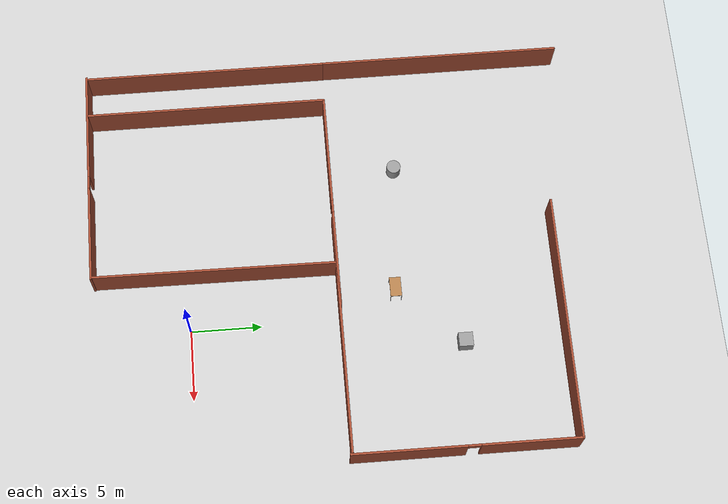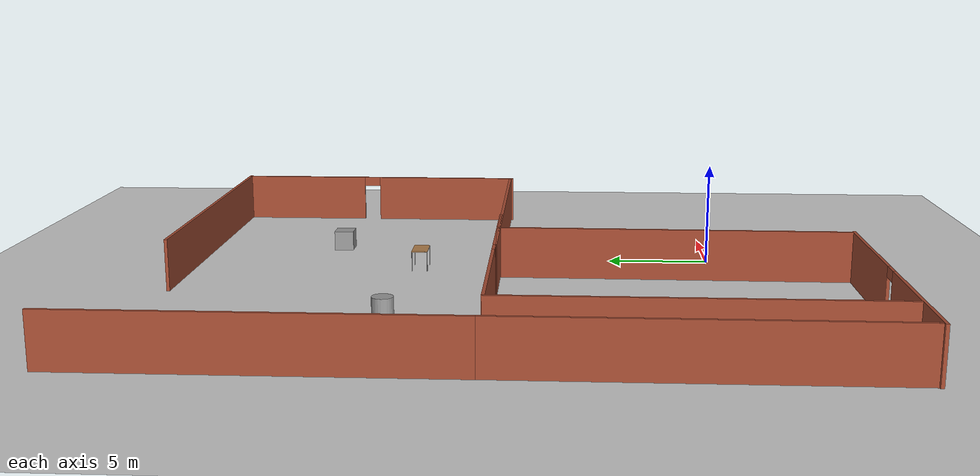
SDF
<sdf version="1.6">
 <world name="default">
  <model name="ground_plane">
   <static>1</static>
   <link name="link">
    <collision name="collision">
     <geometry><plane><normal>0 0 1</normal><size>100 100</size></plane></geometry>
     <surface><friction><ode><mu>100</mu><mu2>50</mu2></ode></friction></surface>
    </collision>
    <visual name="visual">
     <cast_shadows>0</cast_shadows>
     <geometry><plane><normal>0 0 1</normal><size>100 100</size></plane></geometry>
     <material>
      <script><uri>file://media/materials/scripts/gazebo.material</uri><name>Gazebo/Grey</name></script>
     </material>
    </visual>
   </link>
  </model>
  <model name="room11_0">
   <link name="Wall_15">
    <pose>0.315316 -4.25465 0 0 -0 0</pose>
    <visual name="Wall_15_Visual_0">
     <pose>-3.91595 0 1.25 0 -0 0</pose>
     <geometry><box><size>7.91811 0.15 2.5</size></box></geometry>
     <material>
      <script><uri>file://media/materials/scripts/gazebo.material</uri><name>Gazebo/Bricks</name></script>
      <ambient>1 1 1 1</ambient>
      <diffuse>1 1 1 1</diffuse>
      <specular>0.2 0.2 0.2 1</specular>
      <emissive>0 0 0 1</emissive>
     </material>
    </visual>
    <visual name="Wall_15_Visual_1">
     <pose>4.40905 0 1.25 0 -0 0</pose>
     <geometry><box><size>6.93189 0.15 2.5</size></box></geometry>
     <material>
      <script><uri>file://media/materials/scripts/gazebo.material</uri><name>Gazebo/Bricks</name></script>
      <ambient>1 1 1 1</ambient>
      <diffuse>1 1 1 1</diffuse>
      <specular>0.2 0.2 0.2 1</specular>
      <emissive>0 0 0 1</emissive>
     </material>
    </visual>
    <visual name="Wall_15_Visual_2">
     <pose>0.493108 0 2.25 0 -0 0</pose>
     <geometry><box><size>0.9 0.15 0.5</size></box></geometry>
     <material>
      <script><uri>file://media/materials/scripts/gazebo.material</uri><name>Gazebo/Bricks</name></script>
      <ambient>1 1 1 1</ambient>
      <diffuse>1 1 1 1</diffuse>
      <specular>0.2 0.2 0.2 1</specular>
      <emissive>0 0 0 1</emissive>
     </material>
    </visual>
    <collision name="Wall_15_Collision_0">
     <pose>-3.91595 0 1.25 0 -0 0</pose>
     <geometry><box><size>7.91811 0.15 2.5</size></box></geometry>
     <surface>
      <friction>
       <ode><mu>1</mu><mu2>1</mu2><fdir1>0 0 0</fdir1><slip1>0</slip1><slip2>0</slip2></ode>
       <torsional>
        <coefficient>1</coefficient>
        <patch_radius>0</patch_radius>
        <surface_radius>0</surface_radius>
        <use_patch_radius>1</use_patch_radius>
        <ode><slip>0</slip></ode>
       </torsional>
      </friction>
      <bounce><restitution_coefficient>0</restitution_coefficient><threshold>1e+06</threshold></bounce>
      <contact>
       <collide_without_contact>0</collide_without_contact>
       <collide_without_contact_bitmask>1</collide_without_contact_bitmask>
       <collide_bitmask>1</collide_bitmask>
       <ode>
        <soft_cfm>0</soft_cfm>
        <soft_erp>0.2</soft_erp>
        <kp>1e+13</kp>
        <kd>1</kd>
        <max_vel>0.01</max_vel>
        <min_depth>0</min_depth>
       </ode>
       <bullet>
        <split_impulse>1</split_impulse>
        <split_impulse_penetration_threshold>-0.01</split_impulse_penetration_threshold>
        <soft_cfm>0</soft_cfm>
        <soft_erp>0.2</soft_erp>
        <kp>1e+13</kp>
        <kd>1</kd>
       </bullet>
      </contact>
     </surface>
    </collision>
    <collision name="Wall_15_Collision_1">
     <pose>4.40905 0 1.25 0 -0 0</pose>
     <geometry><box><size>6.93189 0.15 2.5</size></box></geometry>
     <surface>
      <friction>
       <ode><mu>1</mu><mu2>1</mu2><fdir1>0 0 0</fdir1><slip1>0</slip1><slip2>0</slip2></ode>
       <torsional>
        <coefficient>1</coefficient>
        <patch_radius>0</patch_radius>
        <surface_radius>0</surface_radius>
        <use_patch_radius>1</use_patch_radius>
        <ode><slip>0</slip></ode>
       </torsional>
      </friction>
      <bounce><restitution_coefficient>0</restitution_coefficient><threshold>1e+06</threshold></bounce>
      <contact>
       <collide_without_contact>0</collide_without_contact>
       <collide_without_contact_bitmask>1</collide_without_contact_bitmask>
       <collide_bitmask>1</collide_bitmask>
       <ode>
        <soft_cfm>0</soft_cfm>
        <soft_erp>0.2</soft_erp>
        <kp>1e+13</kp>
        <kd>1</kd>
        <max_vel>0.01</max_vel>
        <min_depth>0</min_depth>
       </ode>
       <bullet>
        <split_impulse>1</split_impulse>
        <split_impulse_penetration_threshold>-0.01</split_impulse_penetration_threshold>
        <soft_cfm>0</soft_cfm>
        <soft_erp>0.2</soft_erp>
        <kp>1e+13</kp>
        <kd>1</kd>
       </bullet>
      </contact>
     </surface>
    </collision>
    <collision name="Wall_15_Collision_2">
     <pose>0.493108 0 2.25 0 -0 0</pose>
     <geometry><box><size>0.9 0.15 0.5</size></box></geometry>
     <surface>
      <friction>
       <ode><mu>1</mu><mu2>1</mu2><fdir1>0 0 0</fdir1><slip1>0</slip1><slip2>0</slip2></ode>
       <torsional>
        <coefficient>1</coefficient>
        <patch_radius>0</patch_radius>
        <surface_radius>0</surface_radius>
        <use_patch_radius>1</use_patch_radius>
        <ode><slip>0</slip></ode>
       </torsional>
      </friction>
      <bounce><restitution_coefficient>0</restitution_coefficient><threshold>1e+06</threshold></bounce>
      <contact>
       <collide_without_contact>0</collide_without_contact>
       <collide_without_contact_bitmask>1</collide_without_contact_bitmask>
       <collide_bitmask>1</collide_bitmask>
       <ode>
        <soft_cfm>0</soft_cfm>
        <soft_erp>0.2</soft_erp>
        <kp>1e+13</kp>
        <kd>1</kd>
        <max_vel>0.01</max_vel>
        <min_depth>0</min_depth>
       </ode>
       <bullet>
        <split_impulse>1</split_impulse>
        <split_impulse_penetration_threshold>-0.01</split_impulse_penetration_threshold>
        <soft_cfm>0</soft_cfm>
        <soft_erp>0.2</soft_erp>
        <kp>1e+13</kp>
        <kd>1</kd>
       </bullet>
      </contact>
     </surface>
    </collision>
   </link>
   <link name="Wall_15_clone">
    <pose>3.47183 12.9564 0 0 -0 0</pose>
    <visual name="Wall_15_Visual_0">
     <pose>-3.91595 0 1.25 0 -0 0</pose>
     <geometry><box><size>7.91811 0.15 2.5</size></box></geometry>
     <material>
      <script><uri>file://media/materials/scripts/gazebo.material</uri><name>Gazebo/Bricks</name></script>
      <ambient>1 1 1 1</ambient>
      <diffuse>1 1 1 1</diffuse>
      <specular>0.2 0.2 0.2 1</specular>
      <emissive>0 0 0 1</emissive>
      <shader type="pixel"/>
     </material>
    </visual>
    <visual name="Wall_15_Visual_1">
     <pose>4.40905 0 1.25 0 -0 0</pose>
     <geometry><box><size>6.93189 0.15 2.5</size></box></geometry>
     <material>
      <script><uri>file://media/materials/scripts/gazebo.material</uri><name>Gazebo/Bricks</name></script>
      <ambient>1 1 1 1</ambient>
      <diffuse>1 1 1 1</diffuse>
      <specular>0.2 0.2 0.2 1</specular>
      <emissive>0 0 0 1</emissive>
      <shader type="pixel"/>
     </material>
    </visual>
    <visual name="Wall_15_Visual_2">
     <pose>0.493108 0 2.25 0 -0 0</pose>
     <geometry><box><size>0.9 0.15 0.5</size></box></geometry>
     <material>
      <script><uri>file://media/materials/scripts/gazebo.material</uri><name>Gazebo/Bricks</name></script>
      <ambient>1 1 1 1</ambient>
      <diffuse>1 1 1 1</diffuse>
      <specular>0.2 0.2 0.2 1</specular>
      <emissive>0 0 0 1</emissive>
      <shader type="pixel"/>
     </material>
    </visual>
    <collision name="Wall_15_Collision_0">
     <pose>-3.91595 0 1.25 0 -0 0</pose>
     <geometry><box><size>7.91811 0.15 2.5</size></box></geometry>
     <surface>
      <friction>
       <ode><mu>1</mu><mu2>1</mu2><fdir1>0 0 0</fdir1><slip1>0</slip1><slip2>0</slip2></ode>
       <torsional>
        <coefficient>1</coefficient>
        <patch_radius>0</patch_radius>
        <surface_radius>0</surface_radius>
        <use_patch_radius>1</use_patch_radius>
        <ode><slip>0</slip></ode>
       </torsional>
      </friction>
      <bounce><restitution_coefficient>0</restitution_coefficient><threshold>1e+06</threshold></bounce>
      <contact>
       <collide_without_contact>0</collide_without_contact>
       <collide_without_contact_bitmask>1</collide_without_contact_bitmask>
       <collide_bitmask>1</collide_bitmask>
       <ode>
        <soft_cfm>0</soft_cfm>
        <soft_erp>0.2</soft_erp>
        <kp>1e+13</kp>
        <kd>1</kd>
        <max_vel>0.01</max_vel>
        <min_depth>0</min_depth>
       </ode>
       <bullet>
        <split_impulse>1</split_impulse>
        <split_impulse_penetration_threshold>-0.01</split_impulse_penetration_threshold>
        <soft_cfm>0</soft_cfm>
        <soft_erp>0.2</soft_erp>
        <kp>1e+13</kp>
        <kd>1</kd>
       </bullet>
      </contact>
     </surface>
    </collision>
    <collision name="Wall_15_Collision_1">
     <pose>4.40905 0 1.25 0 -0 0</pose>
     <geometry><box><size>6.93189 0.15 2.5</size></box></geometry>
     <surface>
      <friction>
       <ode><mu>1</mu><mu2>1</mu2><fdir1>0 0 0</fdir1><slip1>0</slip1><slip2>0</slip2></ode>
       <torsional>
        <coefficient>1</coefficient>
        <patch_radius>0</patch_radius>
        <surface_radius>0</surface_radius>
        <use_patch_radius>1</use_patch_radius>
        <ode><slip>0</slip></ode>
       </torsional>
      </friction>
      <bounce><restitution_coefficient>0</restitution_coefficient><threshold>1e+06</threshold></bounce>
      <contact>
       <collide_without_contact>0</collide_without_contact>
       <collide_without_contact_bitmask>1</collide_without_contact_bitmask>
       <collide_bitmask>1</collide_bitmask>
       <ode>
        <soft_cfm>0</soft_cfm>
        <soft_erp>0.2</soft_erp>
        <kp>1e+13</kp>
        <kd>1</kd>
        <max_vel>0.01</max_vel>
        <min_depth>0</min_depth>
       </ode>
       <bullet>
        <split_impulse>1</split_impulse>
        <split_impulse_penetration_threshold>-0.01</split_impulse_penetration_threshold>
        <soft_cfm>0</soft_cfm>
        <soft_erp>0.2</soft_erp>
        <kp>1e+13</kp>
        <kd>1</kd>
       </bullet>
      </contact>
     </surface>
    </collision>
    <collision name="Wall_15_Collision_2">
     <pose>0.493108 0 2.25 0 -0 0</pose>
     <geometry><box><size>0.9 0.15 0.5</size></box></geometry>
     <surface>
      <friction>
       <ode><mu>1</mu><mu2>1</mu2><fdir1>0 0 0</fdir1><slip1>0</slip1><slip2>0</slip2></ode>
       <torsional>
        <coefficient>1</coefficient>
        <patch_radius>0</patch_radius>
        <surface_radius>0</surface_radius>
        <use_patch_radius>1</use_patch_radius>
        <ode><slip>0</slip></ode>
       </torsional>
      </friction>
      <bounce><restitution_coefficient>0</restitution_coefficient><threshold>1e+06</threshold></bounce>
      <contact>
       <collide_without_contact>0</collide_without_contact>
       <collide_without_contact_bitmask>1</collide_without_contact_bitmask>
       <collide_bitmask>1</collide_bitmask>
       <ode>
        <soft_cfm>0</soft_cfm>
        <soft_erp>0.2</soft_erp>
        <kp>1e+13</kp>
        <kd>1</kd>
        <max_vel>0.01</max_vel>
        <min_depth>0</min_depth>
       </ode>
       <bullet>
        <split_impulse>1</split_impulse>
        <split_impulse_penetration_threshold>-0.01</split_impulse_penetration_threshold>
        <soft_cfm>0</soft_cfm>
        <soft_erp>0.2</soft_erp>
        <kp>1e+13</kp>
        <kd>1</kd>
       </bullet>
      </contact>
     </surface>
    </collision>
   </link>
   <link name="Wall_16">
    <pose>8.12665 4.39648 0 0 -0 1.56252</pose>
    <visual name="Wall_16_Visual">
     <pose>0 0 1.25 0 -0 0</pose>
     <geometry><box><size>17.2513 0.15 2.5</size></box></geometry>
     <material>
      <script><uri>file://media/materials/scripts/gazebo.material</uri><name>Gazebo/Bricks</name></script>
      <ambient>1 1 1 1</ambient>
      <diffuse>1 1 1 1</diffuse>
      <specular>0.2 0.2 0.2 1</specular>
      <emissive>0 0 0 1</emissive>
     </material>
    </visual>
    <collision name="Wall_16_Collision">
     <pose>0 0 1.25 0 -0 0</pose>
     <geometry><box><size>17.2513 0.15 2.5</size></box></geometry>
     <surface>
      <friction>
       <ode><mu>1</mu><mu2>1</mu2><fdir1>0 0 0</fdir1><slip1>0</slip1><slip2>0</slip2></ode>
       <torsional>
        <coefficient>1</coefficient>
        <patch_radius>0</patch_radius>
        <surface_radius>0</surface_radius>
        <use_patch_radius>1</use_patch_radius>
        <ode><slip>0</slip></ode>
       </torsional>
      </friction>
      <bounce><restitution_coefficient>0</restitution_coefficient><threshold>1e+06</threshold></bounce>
      <contact>
       <collide_without_contact>0</collide_without_contact>
       <collide_without_contact_bitmask>1</collide_without_contact_bitmask>
       <collide_bitmask>1</collide_bitmask>
       <ode>
        <soft_cfm>0</soft_cfm>
        <soft_erp>0.2</soft_erp>
        <kp>1e+13</kp>
        <kd>1</kd>
        <max_vel>0.01</max_vel>
        <min_depth>0</min_depth>
       </ode>
       <bullet>
        <split_impulse>1</split_impulse>
        <split_impulse_penetration_threshold>-0.01</split_impulse_penetration_threshold>
        <soft_cfm>0</soft_cfm>
        <soft_erp>0.2</soft_erp>
        <kp>1e+13</kp>
        <kd>1</kd>
       </bullet>
      </contact>
     </surface>
    </collision>
   </link>
   <link name="Wall_21">
    <pose>-7.38543 4.46581 0 0 0 -1.5708</pose>
    <inertial>
     <mass>1</mass>
     <inertia><ixx>1</ixx><ixy>0</ixy><ixz>0</ixz><iyy>1</iyy><iyz>0</iyz><izz>1</izz></inertia>
    </inertial>
    <visual name="Wall_21_Visual">
     <pose>0 0 1.25 0 -0 0</pose>
     <geometry><box><size>17.25 0.15 2.5</size></box></geometry>
     <material>
      <script><uri>file://media/materials/scripts/gazebo.material</uri><name>Gazebo/Bricks</name></script>
      <ambient>1 1 1 1</ambient>
      <diffuse>1 1 1 1</diffuse>
      <specular>0.2 0.2 0.2 1</specular>
      <emissive>0 0 0 1</emissive>
      <shader type="vertex"><normal_map>__default__</normal_map></shader>
     </material>
    </visual>
    <collision name="Wall_21_Collision">
     <pose>0 0 1.25 0 -0 0</pose>
     <geometry><box><size>17.25 0.15 2.5</size></box></geometry>
     <surface>
      <friction>
       <ode><mu>1</mu><mu2>1</mu2><fdir1>0 0 0</fdir1><slip1>0</slip1><slip2>0</slip2></ode>
       <torsional>
        <coefficient>1</coefficient>
        <patch_radius>0</patch_radius>
        <surface_radius>0</surface_radius>
        <use_patch_radius>1</use_patch_radius>
        <ode><slip>0</slip></ode>
       </torsional>
      </friction>
      <bounce><restitution_coefficient>0</restitution_coefficient><threshold>1e+06</threshold></bounce>
      <contact>
       <collide_without_contact>0</collide_without_contact>
       <collide_without_contact_bitmask>1</collide_without_contact_bitmask>
       <collide_bitmask>1</collide_bitmask>
       <ode>
        <soft_cfm>0</soft_cfm>
        <soft_erp>0.2</soft_erp>
        <kp>1e+13</kp>
        <kd>1</kd>
        <max_vel>0.01</max_vel>
        <min_depth>0</min_depth>
       </ode>
       <bullet>
        <split_impulse>1</split_impulse>
        <split_impulse_penetration_threshold>-0.01</split_impulse_penetration_threshold>
        <soft_cfm>0</soft_cfm>
        <soft_erp>0.2</soft_erp>
        <kp>1e+13</kp>
        <kd>1</kd>
       </bullet>
      </contact>
     </surface>
    </collision>
   </link>
   <link name="Wall_21_clone">
    <pose>-7.39471 21.6853 0 0 0 -1.5708</pose>
    <inertial>
     <mass>1</mass>
     <inertia><ixx>1</ixx><ixy>0</ixy><ixz>0</ixz><iyy>1</iyy><iyz>0</iyz><izz>1</izz></inertia>
    </inertial>
    <visual name="Wall_21_Visual">
     <pose>0 0 1.25 0 -0 0</pose>
     <geometry><box><size>17.25 0.15 2.5</size></box></geometry>
     <material>
      <script><uri>file://media/materials/scripts/gazebo.material</uri><name>Gazebo/Bricks</name></script>
      <ambient>1 1 1 1</ambient>
      <diffuse>1 1 1 1</diffuse>
      <specular>0.2 0.2 0.2 1</specular>
      <emissive>0 0 0 1</emissive>
      <shader type="vertex"><normal_map>__default__</normal_map></shader>
     </material>
    </visual>
    <collision name="Wall_21_Collision">
     <pose>0 0 1.25 0 -0 0</pose>
     <geometry><box><size>17.25 0.15 2.5</size></box></geometry>
     <surface>
      <friction>
       <ode><mu>1</mu><mu2>1</mu2><fdir1>0 0 0</fdir1><slip1>0</slip1><slip2>0</slip2></ode>
       <torsional>
        <coefficient>1</coefficient>
        <patch_radius>0</patch_radius>
        <surface_radius>0</surface_radius>
        <use_patch_radius>1</use_patch_radius>
        <ode><slip>0</slip></ode>
       </torsional>
      </friction>
      <bounce><restitution_coefficient>0</restitution_coefficient><threshold>1e+06</threshold></bounce>
      <contact>
       <collide_without_contact>0</collide_without_contact>
       <collide_without_contact_bitmask>1</collide_without_contact_bitmask>
       <collide_bitmask>1</collide_bitmask>
       <ode>
        <soft_cfm>0</soft_cfm>
        <soft_erp>0.2</soft_erp>
        <kp>1e+13</kp>
        <kd>1</kd>
        <max_vel>0.01</max_vel>
        <min_depth>0</min_depth>
       </ode>
       <bullet>
        <split_impulse>1</split_impulse>
        <split_impulse_penetration_threshold>-0.01</split_impulse_penetration_threshold>
        <soft_cfm>0</soft_cfm>
        <soft_erp>0.2</soft_erp>
        <kp>1e+13</kp>
        <kd>1</kd>
       </bullet>
      </contact>
     </surface>
    </collision>
   </link>
   <link name="Wall_21_clone_0">
    <pose>-4.43205 4.39602 0 0 0 -1.5708</pose>
    <inertial>
     <mass>1</mass>
     <inertia><ixx>1</ixx><ixy>0</ixy><ixz>0</ixz><iyy>1</iyy><iyz>0</iyz><izz>1</izz></inertia>
    </inertial>
    <visual name="Wall_21_Visual">
     <pose>0 0 1.25 0 -0 0</pose>
     <geometry><box><size>17.25 0.15 2.5</size></box></geometry>
     <material>
      <script><uri>file://media/materials/scripts/gazebo.material</uri><name>Gazebo/Bricks</name></script>
      <ambient>1 1 1 1</ambient>
      <diffuse>1 1 1 1</diffuse>
      <specular>0.2 0.2 0.2 1</specular>
      <emissive>0 0 0 1</emissive>
      <shader type="vertex"><normal_map>__default__</normal_map></shader>
     </material>
    </visual>
    <collision name="Wall_21_Collision">
     <pose>0 0 1.25 0 -0 0</pose>
     <geometry><box><size>17.25 0.15 2.5</size></box></geometry>
     <surface>
      <friction>
       <ode><mu>1</mu><mu2>1</mu2><fdir1>0 0 0</fdir1><slip1>0</slip1><slip2>0</slip2></ode>
       <torsional>
        <coefficient>1</coefficient>
        <patch_radius>0</patch_radius>
        <surface_radius>0</surface_radius>
        <use_patch_radius>1</use_patch_radius>
        <ode><slip>0</slip></ode>
       </torsional>
      </friction>
      <bounce><restitution_coefficient>0</restitution_coefficient><threshold>1e+06</threshold></bounce>
      <contact>
       <collide_without_contact>0</collide_without_contact>
       <collide_without_contact_bitmask>1</collide_without_contact_bitmask>
       <collide_bitmask>1</collide_bitmask>
       <ode>
        <soft_cfm>0</soft_cfm>
        <soft_erp>0.2</soft_erp>
        <kp>1e+13</kp>
        <kd>1</kd>
        <max_vel>0.01</max_vel>
        <min_depth>0</min_depth>
       </ode>
       <bullet>
        <split_impulse>1</split_impulse>
        <split_impulse_penetration_threshold>-0.01</split_impulse_penetration_threshold>
        <soft_cfm>0</soft_cfm>
        <soft_erp>0.2</soft_erp>
        <kp>1e+13</kp>
        <kd>1</kd>
       </bullet>
      </contact>
     </surface>
    </collision>
   </link>
   <static>1</static>
   <pose>-11.7403 -2.36742 0 0 -0 0</pose>
  </model>
  <model name="room_aa_clone">
   <link name="Wall_15">
    <pose>0.315316 -4.25465 0 0 -0 0</pose>
    <visual name="Wall_15_Visual_0">
     <pose>-3.91595 0 1.25 0 -0 0</pose>
     <geometry><box><size>7.91811 0.15 2.5</size></box></geometry>
     <material>
      <script><uri>file://media/materials/scripts/gazebo.material</uri><name>Gazebo/Bricks</name></script>
      <ambient>1 1 1 1</ambient>
      <diffuse>1 1 1 1</diffuse>
      <specular>0.2 0.2 0.2 1</specular>
      <emissive>0 0 0 1</emissive>
     </material>
    </visual>
    <visual name="Wall_15_Visual_1">
     <pose>4.40905 0 1.25 0 -0 0</pose>
     <geometry><box><size>6.93189 0.15 2.5</size></box></geometry>
     <material>
      <script><uri>file://media/materials/scripts/gazebo.material</uri><name>Gazebo/Bricks</name></script>
      <ambient>1 1 1 1</ambient>
      <diffuse>1 1 1 1</diffuse>
      <specular>0.2 0.2 0.2 1</specular>
      <emissive>0 0 0 1</emissive>
     </material>
    </visual>
    <visual name="Wall_15_Visual_2">
     <pose>0.493108 0 2.25 0 -0 0</pose>
     <geometry><box><size>0.9 0.15 0.5</size></box></geometry>
     <material>
      <script><uri>file://media/materials/scripts/gazebo.material</uri><name>Gazebo/Bricks</name></script>
      <ambient>1 1 1 1</ambient>
      <diffuse>1 1 1 1</diffuse>
      <specular>0.2 0.2 0.2 1</specular>
      <emissive>0 0 0 1</emissive>
     </material>
    </visual>
    <collision name="Wall_15_Collision_0">
     <pose>-3.91595 0 1.25 0 -0 0</pose>
     <geometry><box><size>7.91811 0.15 2.5</size></box></geometry>
     <surface>
      <friction>
       <ode><mu>1</mu><mu2>1</mu2><fdir1>0 0 0</fdir1><slip1>0</slip1><slip2>0</slip2></ode>
       <torsional>
        <coefficient>1</coefficient>
        <patch_radius>0</patch_radius>
        <surface_radius>0</surface_radius>
        <use_patch_radius>1</use_patch_radius>
        <ode><slip>0</slip></ode>
       </torsional>
      </friction>
      <bounce><restitution_coefficient>0</restitution_coefficient><threshold>1e+06</threshold></bounce>
      <contact>
       <collide_without_contact>0</collide_without_contact>
       <collide_without_contact_bitmask>1</collide_without_contact_bitmask>
       <collide_bitmask>1</collide_bitmask>
       <ode>
        <soft_cfm>0</soft_cfm>
        <soft_erp>0.2</soft_erp>
        <kp>1e+13</kp>
        <kd>1</kd>
        <max_vel>0.01</max_vel>
        <min_depth>0</min_depth>
       </ode>
       <bullet>
        <split_impulse>1</split_impulse>
        <split_impulse_penetration_threshold>-0.01</split_impulse_penetration_threshold>
        <soft_cfm>0</soft_cfm>
        <soft_erp>0.2</soft_erp>
        <kp>1e+13</kp>
        <kd>1</kd>
       </bullet>
      </contact>
     </surface>
    </collision>
    <collision name="Wall_15_Collision_1">
     <pose>4.40905 0 1.25 0 -0 0</pose>
     <geometry><box><size>6.93189 0.15 2.5</size></box></geometry>
     <surface>
      <friction>
       <ode><mu>1</mu><mu2>1</mu2><fdir1>0 0 0</fdir1><slip1>0</slip1><slip2>0</slip2></ode>
       <torsional>
        <coefficient>1</coefficient>
        <patch_radius>0</patch_radius>
        <surface_radius>0</surface_radius>
        <use_patch_radius>1</use_patch_radius>
        <ode><slip>0</slip></ode>
       </torsional>
      </friction>
      <bounce><restitution_coefficient>0</restitution_coefficient><threshold>1e+06</threshold></bounce>
      <contact>
       <collide_without_contact>0</collide_without_contact>
       <collide_without_contact_bitmask>1</collide_without_contact_bitmask>
       <collide_bitmask>1</collide_bitmask>
       <ode>
        <soft_cfm>0</soft_cfm>
        <soft_erp>0.2</soft_erp>
        <kp>1e+13</kp>
        <kd>1</kd>
        <max_vel>0.01</max_vel>
        <min_depth>0</min_depth>
       </ode>
       <bullet>
        <split_impulse>1</split_impulse>
        <split_impulse_penetration_threshold>-0.01</split_impulse_penetration_threshold>
        <soft_cfm>0</soft_cfm>
        <soft_erp>0.2</soft_erp>
        <kp>1e+13</kp>
        <kd>1</kd>
       </bullet>
      </contact>
     </surface>
    </collision>
    <collision name="Wall_15_Collision_2">
     <pose>0.493108 0 2.25 0 -0 0</pose>
     <geometry><box><size>0.9 0.15 0.5</size></box></geometry>
     <surface>
      <friction>
       <ode><mu>1</mu><mu2>1</mu2><fdir1>0 0 0</fdir1><slip1>0</slip1><slip2>0</slip2></ode>
       <torsional>
        <coefficient>1</coefficient>
        <patch_radius>0</patch_radius>
        <surface_radius>0</surface_radius>
        <use_patch_radius>1</use_patch_radius>
        <ode><slip>0</slip></ode>
       </torsional>
      </friction>
      <bounce><restitution_coefficient>0</restitution_coefficient><threshold>1e+06</threshold></bounce>
      <contact>
       <collide_without_contact>0</collide_without_contact>
       <collide_without_contact_bitmask>1</collide_without_contact_bitmask>
       <collide_bitmask>1</collide_bitmask>
       <ode>
        <soft_cfm>0</soft_cfm>
        <soft_erp>0.2</soft_erp>
        <kp>1e+13</kp>
        <kd>1</kd>
        <max_vel>0.01</max_vel>
        <min_depth>0</min_depth>
       </ode>
       <bullet>
        <split_impulse>1</split_impulse>
        <split_impulse_penetration_threshold>-0.01</split_impulse_penetration_threshold>
        <soft_cfm>0</soft_cfm>
        <soft_erp>0.2</soft_erp>
        <kp>1e+13</kp>
        <kd>1</kd>
       </bullet>
      </contact>
     </surface>
    </collision>
   </link>
   <link name="Wall_16">
    <pose>8.12665 4.39648 0 0 -0 1.57</pose>
    <inertial>
     <mass>1</mass>
     <inertia><ixx>1</ixx><ixy>0</ixy><ixz>0</ixz><iyy>1</iyy><iyz>0</iyz><izz>1</izz></inertia>
    </inertial>
    <visual name="Wall_16_Visual">
     <pose>0 0 1.25 0 -0 0</pose>
     <geometry><box><size>17.2513 0.15 2.5</size></box></geometry>
     <material>
      <script><uri>file://media/materials/scripts/gazebo.material</uri><name>Gazebo/Bricks</name></script>
      <ambient>1 1 1 1</ambient>
      <diffuse>1 1 1 1</diffuse>
      <specular>0.2 0.2 0.2 1</specular>
      <emissive>0 0 0 1</emissive>
      <shader type="vertex"><normal_map>__default__</normal_map></shader>
     </material>
    </visual>
    <collision name="Wall_16_Collision">
     <pose>0 0 1.25 0 -0 0</pose>
     <geometry><box><size>17.2513 0.15 2.5</size></box></geometry>
     <surface>
      <friction>
       <ode><mu>1</mu><mu2>1</mu2><fdir1>0 0 0</fdir1><slip1>0</slip1><slip2>0</slip2></ode>
       <torsional>
        <coefficient>1</coefficient>
        <patch_radius>0</patch_radius>
        <surface_radius>0</surface_radius>
        <use_patch_radius>1</use_patch_radius>
        <ode><slip>0</slip></ode>
       </torsional>
      </friction>
      <bounce><restitution_coefficient>0</restitution_coefficient><threshold>1e+06</threshold></bounce>
      <contact>
       <collide_without_contact>0</collide_without_contact>
       <collide_without_contact_bitmask>1</collide_without_contact_bitmask>
       <collide_bitmask>1</collide_bitmask>
       <ode>
        <soft_cfm>0</soft_cfm>
        <soft_erp>0.2</soft_erp>
        <kp>1e+13</kp>
        <kd>1</kd>
        <max_vel>0.01</max_vel>
        <min_depth>0</min_depth>
       </ode>
       <bullet>
        <split_impulse>1</split_impulse>
        <split_impulse_penetration_threshold>-0.01</split_impulse_penetration_threshold>
        <soft_cfm>0</soft_cfm>
        <soft_erp>0.2</soft_erp>
        <kp>1e+13</kp>
        <kd>1</kd>
       </bullet>
      </contact>
     </surface>
    </collision>
   </link>
   <link name="Wall_21">
    <pose>-7.38543 4.46581 0 0 0 -1.5708</pose>
    <visual name="Wall_21_Visual">
     <pose>0 0 1.25 0 -0 0</pose>
     <geometry><box><size>17.25 0.15 2.5</size></box></geometry>
     <material>
      <script><uri>file://media/materials/scripts/gazebo.material</uri><name>Gazebo/Bricks</name></script>
      <ambient>1 1 1 1</ambient>
      <diffuse>1 1 1 1</diffuse>
      <specular>0.2 0.2 0.2 1</specular>
      <emissive>0 0 0 1</emissive>
     </material>
    </visual>
    <collision name="Wall_21_Collision">
     <pose>0 0 1.25 0 -0 0</pose>
     <geometry><box><size>17.25 0.15 2.5</size></box></geometry>
     <surface>
      <friction>
       <ode><mu>1</mu><mu2>1</mu2><fdir1>0 0 0</fdir1><slip1>0</slip1><slip2>0</slip2></ode>
       <torsional>
        <coefficient>1</coefficient>
        <patch_radius>0</patch_radius>
        <surface_radius>0</surface_radius>
        <use_patch_radius>1</use_patch_radius>
        <ode><slip>0</slip></ode>
       </torsional>
      </friction>
      <bounce><restitution_coefficient>0</restitution_coefficient><threshold>1e+06</threshold></bounce>
      <contact>
       <collide_without_contact>0</collide_without_contact>
       <collide_without_contact_bitmask>1</collide_without_contact_bitmask>
       <collide_bitmask>1</collide_bitmask>
       <ode>
        <soft_cfm>0</soft_cfm>
        <soft_erp>0.2</soft_erp>
        <kp>1e+13</kp>
        <kd>1</kd>
        <max_vel>0.01</max_vel>
        <min_depth>0</min_depth>
       </ode>
       <bullet>
        <split_impulse>1</split_impulse>
        <split_impulse_penetration_threshold>-0.01</split_impulse_penetration_threshold>
        <soft_cfm>0</soft_cfm>
        <soft_erp>0.2</soft_erp>
        <kp>1e+13</kp>
        <kd>1</kd>
       </bullet>
      </contact>
     </surface>
    </collision>
   </link>
   <static>1</static>
   <pose>5.88269 17.922 0 0 -0 1.57</pose>
  </model>
  <model name="table">
   <static>0</static>
   <link name="link">
    <collision name="surface">
     <pose>0 0 1 0 -0 0</pose>
     <geometry><box><size>1.5 0.8 0.03</size></box></geometry>
     <surface><friction><ode><mu>0.6</mu><mu2>0.6</mu2></ode></friction></surface>
    </collision>
    <visual name="visual1">
     <pose>0 0 1 0 -0 0</pose>
     <geometry><box><size>1.4 0.8 0.04</size></box></geometry>
     <material>
      <script><uri>file://media/materials/scripts/gazebo.material</uri><name>Gazebo/Wood</name></script>
     </material>
    </visual>
    <collision name="front_left_leg">
     <pose>0.68 0.38 0.5 0 -0 0</pose>
     <geometry><cylinder><radius>0.02</radius><length>1</length></cylinder></geometry>
    </collision>
    <visual name="front_left_leg">
     <pose>0.68 0.38 0.5 0 -0 0</pose>
     <geometry><cylinder><radius>0.02</radius><length>1</length></cylinder></geometry>
     <material>
      <script><uri>file://media/materials/scripts/gazebo.material</uri><name>Gazebo/Grey</name></script>
     </material>
    </visual>
    <collision name="front_right_leg">
     <pose>0.68 -0.38 0.5 0 -0 0</pose>
     <geometry><cylinder><radius>0.02</radius><length>1</length></cylinder></geometry>
    </collision>
    <visual name="front_right_leg">
     <pose>0.68 -0.38 0.5 0 -0 0</pose>
     <geometry><cylinder><radius>0.02</radius><length>1</length></cylinder></geometry>
     <material>
      <script><uri>file://media/materials/scripts/gazebo.material</uri><name>Gazebo/Grey</name></script>
     </material>
    </visual>
    <collision name="back_right_leg">
     <pose>-0.68 -0.38 0.5 0 -0 0</pose>
     <geometry><cylinder><radius>0.02</radius><length>1</length></cylinder></geometry>
    </collision>
    <visual name="back_right_leg">
     <pose>-0.68 -0.38 0.5 0 -0 0</pose>
     <geometry><cylinder><radius>0.02</radius><length>1</length></cylinder></geometry>
     <material>
      <script><uri>file://media/materials/scripts/gazebo.material</uri><name>Gazebo/Grey</name></script>
     </material>
    </visual>
    <collision name="back_left_leg">
     <pose>-0.68 0.38 0.5 0 -0 0</pose>
     <geometry><cylinder><radius>0.02</radius><length>1</length></cylinder></geometry>
    </collision>
    <visual name="back_left_leg">
     <pose>-0.68 0.38 0.5 0 -0 0</pose>
     <geometry><cylinder><radius>0.02</radius><length>1</length></cylinder></geometry>
     <material>
      <script><uri>file://media/materials/scripts/gazebo.material</uri><name>Gazebo/Grey</name></script>
     </material>
    </visual>
    <inertial>
     <inertia><ixx>1</ixx><ixy>0</ixy><ixz>0</ixz><iyy>1</iyy><iyz>0</iyz><izz>1</izz></inertia>
     <mass>1</mass>
    </inertial>
   </link>
   <pose>-1.93522 14.5824 0 0 -0 0</pose>
  </model>
  <model name="unit_box_0">
   <pose>2.2743 19.1191 0.5 0 -0 0</pose>
   <link name="link">
    <inertial>
     <mass>1</mass>
     <inertia>
      <ixx>0.166667</ixx>
      <ixy>0</ixy>
      <ixz>0</ixz>
      <iyy>0.166667</iyy>
      <iyz>0</iyz>
      <izz>0.166667</izz>
     </inertia>
    </inertial>
    <collision name="collision"><geometry><box><size>1 1 1</size></box></geometry></collision>
    <visual name="visual">
     <geometry><box><size>1 1 1</size></box></geometry>
     <material>
      <script><name>Gazebo/Grey</name><uri>file://media/materials/scripts/gazebo.material</uri></script>
     </material>
    </visual>
   </link>
  </model>
  <model name="unit_cylinder_0">
   <pose>-11.1512 15.295 0.5 0 -0 0</pose>
   <link name="link">
    <inertial>
     <mass>1</mass>
     <inertia><ixx>0.145833</ixx><ixy>0</ixy><ixz>0</ixz><iyy>0.145833</iyy><iyz>0</iyz><izz>0.125</izz></inertia>
    </inertial>
    <collision name="collision">
     <geometry><cylinder><radius>0.5</radius><length>1</length></cylinder></geometry>
    </collision>
    <visual name="visual">
     <geometry><cylinder><radius>0.5</radius><length>1</length></cylinder></geometry>
     <material>
      <script><name>Gazebo/Grey</name><uri>file://media/materials/scripts/gazebo.material</uri></script>
     </material>
    </visual>
   </link>
  </model>
 </world>
</sdf>
